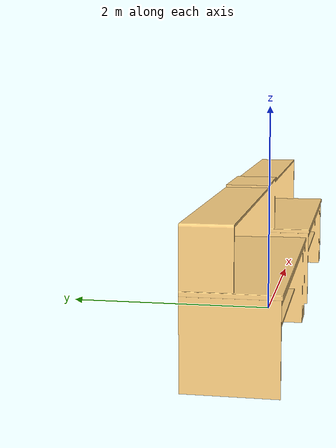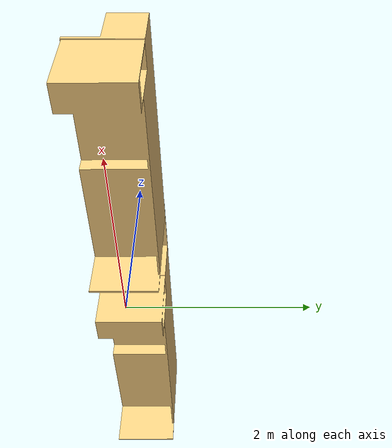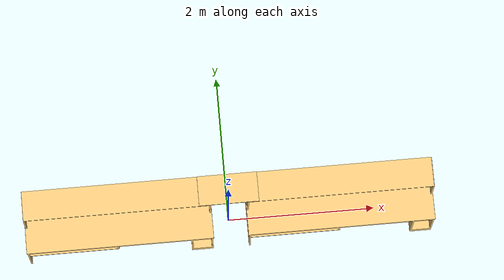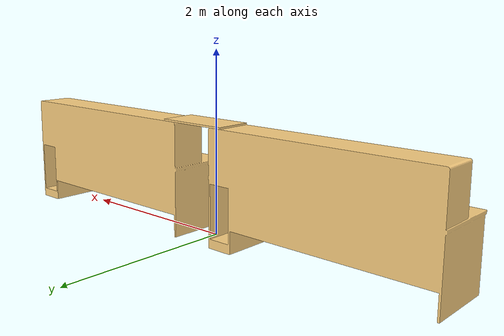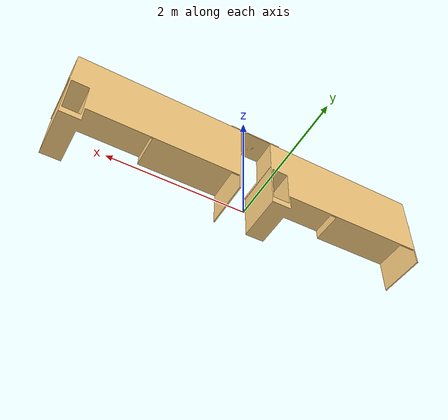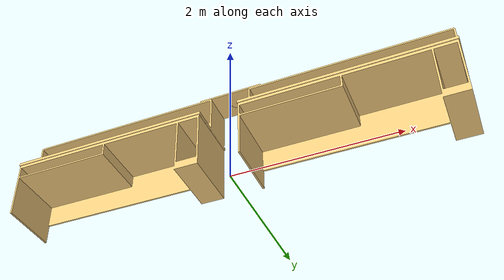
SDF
<sdf version="1.11">
  <model name="table">
    <static>true</static>
    <link name="table_top">
      <collision name="table_top_collision">
        <geometry>
          <mesh>
            <scale>1 1 1</scale>
            <uri>file:///home/maryam-mahmood/udaadbot_ws/src/daadbot_desc/meshes_lab_table/base_link.STL</uri>
          </mesh>
        </geometry>
      </collision>
      <collision name="table_link1_collision">
        <pose>0.005 0.1725 1.27 -1.5708 0 -3.1416</pose>
        <geometry>
          <mesh>
            <scale>1 1 1</scale>
            <uri>file:///home/maryam-mahmood/udaadbot_ws/src/daadbot_desc/meshes_lab_table/link1.STL</uri>
          </mesh>
        </geometry>
      </collision>
      <visual name="table_top_visual">
        <geometry>
          <mesh>
            <scale>1 1 1</scale>
            <uri>file:///home/maryam-mahmood/udaadbot_ws/src/daadbot_desc/meshes_lab_table/base_link.STL</uri>
          </mesh>
        </geometry>
        <material>
          <diffuse>1 0.825 0.5125 1</diffuse>
          <ambient>1 0.825 0.5125 1</ambient>
        </material>
      </visual>
      <visual name="table_link1_visual">
        <pose>0.005 0.1725 1.27 -1.5708 0 -3.1416</pose>
        <geometry>
          <mesh>
            <scale>1 1 1</scale>
            <uri>file:///home/maryam-mahmood/udaadbot_ws/src/daadbot_desc/meshes_lab_table/link1.STL</uri>
          </mesh>
        </geometry>
        <material>
          <diffuse>1 0.825 0.5125 1</diffuse>
          <ambient>1 0.825 0.5125 1</ambient>
        </material>
      </visual>
    </link>
  </model>
</sdf>
